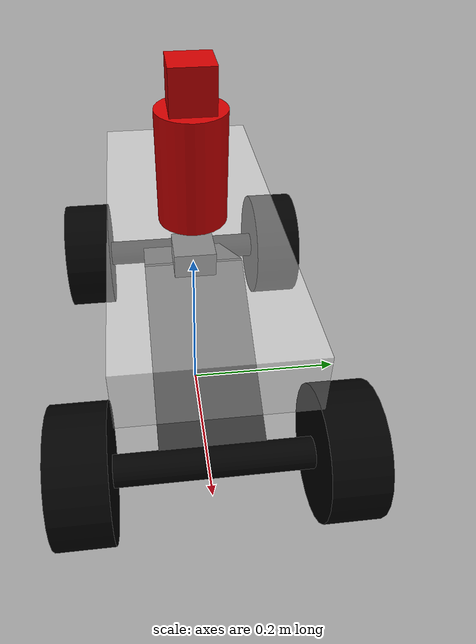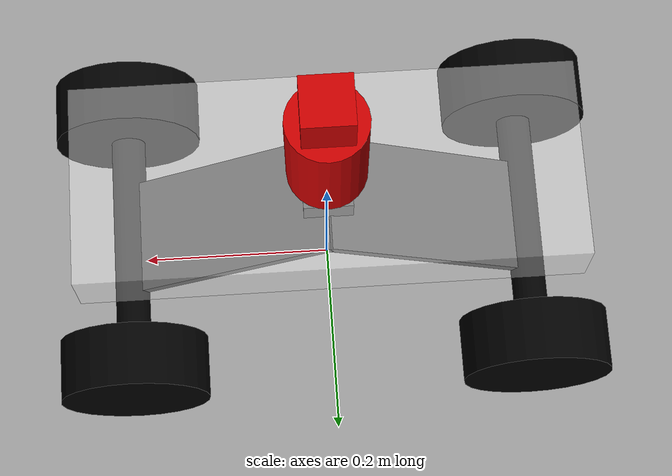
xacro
<?xml version="1.0"?>
<robot name="jetsoncar" xmlns:xacro="http://www.ros.org/wiki/xacro">

	<xacro:include filename="$(find jetsoncar_sim_description)/urdf/parameters.xacro" />
	<xacro:include filename="$(find jetsoncar_sim_description)/urdf/functions.xacro" />
	<xacro:include filename="$(find jetsoncar_sim_description)/urdf/physical.xacro" />
	<xacro:include filename="$(find jetsoncar_sim_description)/urdf/joints.xacro" />
	<xacro:include filename="$(find jetsoncar_sim_description)/urdf/transmissions.xacro" />
	<xacro:include filename="$(find jetsoncar_sim_description)/urdf/materials.xacro" />

	<link name="footprint"/>

	<link name="base_link">
		<visual>
			<material name="acrylic"/>
			<xacro:baseplate_geometry/>
		</visual>
		<collision>
			<xacro:baseplate_geometry/>
		</collision>
		<inertial>
			<xacro:baseplate_inertial/>
		</inertial>
	</link>
	<xacro:fixed_offset_joint parent="footprint" child="base_link" offset="0 0 ${baseplate_to_wheel_center+wheel_diameter/2}"/>

	<xacro:if value="${enable_imu}">
		<link name="imu">
			<visual>
				<material name="grey"/>
				<xacro:imu_geometry/>
			</visual>
			<collision>
				<xacro:imu_geometry/>
			</collision>
			<inertial>
				<xacro:imu_inertial/>
			</inertial>
		</link>
		<xacro:fixed_offset_joint parent="base_link" child="imu" offset="0 0 ${imu_height/2}"/> <!-- because origin is in the center, we want the IMU to stand on the baseplate -->
		<gazebo reference="imu">
		</gazebo>
	</xacro:if>

	<link name="front_mount">
		<visual>
			<material name="grey"/>
			<xacro:front_mount_geometry/>
		</visual>
		<collision>
			<xacro:front_mount_geometry/>
		</collision>
		<inertial>
			<xacro:front_mount_inertial/>
		</inertial>
	</link>
	<xacro:fixed_offset_joint parent="base_link" child="front_mount" offset="${front_to_rear_wheel_center/4} 0 -${baseplate_to_wheel_center/2}"/>

	<link name="rear_mount">
		<visual>
			<material name="grey"/>
			<xacro:rear_mount_geometry/>
		</visual>
		<collision>
			<xacro:rear_mount_geometry/>
		</collision>
		<inertial>
			<xacro:rear_mount_inertial/>
		</inertial>
	</link>
	<xacro:fixed_offset_joint parent="base_link" child="rear_mount" offset="-${front_to_rear_wheel_center/4} 0 -${baseplate_to_wheel_center/2}"/>

	<link name="front_shaft">
		<visual>
			<material name="black"/>
			<xacro:shaft_geometry/>
		</visual>
		<inertial>
			<xacro:shaft_inertial/>
		</inertial>
	</link>
	<xacro:fixed_offset_joint parent="front_mount" child="front_shaft" offset="${front_to_rear_wheel_center/4} 0 -${baseplate_to_wheel_center/2}"/>

	<link name="rear_shaft">
		<visual>
			<material name="black"/>
			<xacro:shaft_geometry/>
		</visual>
		<collision>
			<xacro:shaft_geometry/>
		</collision>
		<inertial>
			<xacro:shaft_inertial/>
		</inertial>
	</link>
	<xacro:fixed_offset_joint parent="rear_mount" child="rear_shaft" offset="-${front_to_rear_wheel_center/4} 0 -${baseplate_to_wheel_center/2}"/>

	<link name="front_right_hinge">
		<visual>
			<material name="white"/>
			<xacro:hinge_geometry/>
		</visual>
		<collision>
			<xacro:hinge_geometry/>
			<contact_coefficients mu="10" kp="1000.0" kd="1.0"/>  <!-- mu=The friction coefficient, kp=Stiffness coefficient, kd=Dampening coefficient -->
		</collision>
		<inertial>
			<xacro:hinge_inertial/>
		</inertial>
	</link>
	<xacro:hinge_joint parent="front_shaft" child="front_right_hinge" offset="0 -${left_to_right_wheel_center/2} 0"/>
	<xacro:hinge_transmission hinge="front_right_hinge"/>

	<link name="front_left_hinge">
		<visual>
			<material name="white"/>
			<xacro:hinge_geometry/>
		</visual>
		<collision>
			<xacro:hinge_geometry/>
			<contact_coefficients mu="10" kp="1000.0" kd="1.0"/>  <!-- mu=The friction coefficient, kp=Stiffness coefficient, kd=Dampening coefficient -->
		</collision>
		<inertial>
			<xacro:hinge_inertial/>
		</inertial>
	</link>
	<xacro:hinge_joint parent="front_shaft" child="front_left_hinge" offset="0 ${left_to_right_wheel_center/2} 0"/>
	<xacro:hinge_transmission hinge="front_left_hinge"/>

	<link name="front_right_wheel">
		<visual>
			<material name="black"/>
			<xacro:wheel_geometry/>
		</visual>
		<collision>
			<xacro:wheel_geometry/>
			<contact_coefficients mu="10" kp="1000.0" kd="1.0"/>  <!-- mu=The friction coefficient, kp=Stiffness coefficient, kd=Dampening coefficient -->
		</collision>
		<inertial>
			<xacro:wheel_inertial/>
		</inertial>
	</link>
	<xacro:wheel_joint parent="front_right_hinge" child="front_right_wheel" offset="0 0 0"/>
	<xacro:wheel_transmission wheel="front_right_wheel"/>

	<link name="front_left_wheel">
		<visual>
			<material name="black"/>
			<xacro:wheel_geometry/>
		</visual>
		<collision>
			<xacro:wheel_geometry/>
			<contact_coefficients mu="10" kp="1000.0" kd="1.0"/>  <!-- mu=The friction coefficient, kp=Stiffness coefficient, kd=Dampening coefficient -->
		</collision>
		<inertial>
			<xacro:wheel_inertial/>
		</inertial>
	</link>
	<xacro:wheel_joint parent="front_left_hinge" child="front_left_wheel" offset="0 0 0"/>
	<xacro:wheel_transmission wheel="front_left_wheel"/>

	<link name="rear_right_wheel">
		<visual>
			<material name="black"/>
			<xacro:wheel_geometry/>
		</visual>
		<collision>
			<xacro:wheel_geometry/>
			<contact_coefficients mu="10" kp="1000.0" kd="1.0"/>  <!-- mu=The friction coefficient, kp=Stiffness coefficient, kd=Dampening coefficient -->
		</collision>
		<inertial>
			<xacro:wheel_inertial/>
		</inertial>
	</link>
	<xacro:wheel_joint parent="rear_shaft" child="rear_right_wheel" offset="0 -${left_to_right_wheel_center/2} 0"/>
	<xacro:wheel_transmission wheel="rear_right_wheel"/>

	<link name="rear_left_wheel">
		<visual>
			<material name="black"/>
			<xacro:wheel_geometry/>
		</visual>
		<collision>
			<xacro:wheel_geometry/>
			<contact_coefficients mu="10" kp="1000.0" kd="1.0"/>  <!-- mu=The friction coefficient, kp=Stiffness coefficient, kd=Dampening coefficient -->
		</collision>
		<inertial>
			<xacro:wheel_inertial/>
		</inertial>
	</link>
	<xacro:wheel_joint parent="rear_shaft" child="rear_left_wheel" offset="0 ${left_to_right_wheel_center/2} 0"/>
	<xacro:wheel_transmission wheel="rear_left_wheel"/>

	<!-- Sensors -->
	<xacro:if value="${enable_front_camera}">
		<link name="camera_mount">
			<visual>
				<material name="blue"/>
				<xacro:camera_mount_geometry/>
			</visual>
			<collision>
				<xacro:camera_mount_geometry/>
			</collision>
			<inertial>
				<xacro:camera_mount_inertial/>
			</inertial>
		</link>
		<xacro:fixed_offset_joint parent="base_link" child="camera_mount" offset="${baseplate_length/2-baseplate_frontedge_to_camera} 0 ${baseplate_thickness}"/>

		<link name="camera">
			<visual>
				<material name="blue"/>
				<xacro:camera_geometry/>
			</visual>
			<collision>
				<xacro:camera_geometry/>
			</collision>
			<inertial>
				<xacro:camera_inertial/>
			</inertial>
		</link>
		<xacro:fixed_offset_joint parent="camera_mount" child="camera" offset="0 0 ${camera_mount_height+camera_height/2}"/>
	</xacro:if>

	<xacro:if value="${enable_dual_camera}">
		<link name="left_camera_mount">
			<visual>
				<material name="blue"/>
				<xacro:camera_mount_geometry/>
			</visual>
			<collision>
				<xacro:camera_mount_geometry/>
			</collision>
			<inertial>
				<xacro:camera_mount_inertial/>
			</inertial>
		</link>
		<xacro:fixed_offset_joint parent="base_link" child="left_camera_mount" offset="${baseplate_length/2-baseplate_frontedge_to_camera} ${camera_disparity/2} ${baseplate_thickness}"/>

		<link name="left_camera">
			<visual>
				<material name="blue"/>
				<xacro:camera_geometry/>
			</visual>
			<collision>
				<xacro:camera_geometry/>
			</collision>
			<inertial>
				<xacro:camera_inertial/>
			</inertial>
		</link>
		<xacro:fixed_offset_joint parent="left_camera_mount" child="left_camera" offset="0 0 ${camera_mount_height+camera_height/2}"/>

		<link name="right_camera_mount">
			<visual>
				<material name="blue"/>
				<xacro:camera_mount_geometry/>
			</visual>
			<collision>
				<xacro:camera_mount_geometry/>
			</collision>
			<inertial>
				<xacro:camera_mount_inertial/>
			</inertial>
		</link>
		<xacro:fixed_offset_joint parent="base_link" child="right_camera_mount" offset="${baseplate_length/2-baseplate_frontedge_to_camera} -${camera_disparity/2} ${baseplate_thickness}"/>

		<link name="right_camera">
			<visual>
				<material name="blue"/>
				<xacro:camera_geometry/>
			</visual>
			<collision>
				<xacro:camera_geometry/>
			</collision>
			<inertial>
				<xacro:camera_inertial/>
			</inertial>
		</link>
		<xacro:fixed_offset_joint parent="right_camera_mount" child="right_camera" offset="0 0 ${camera_mount_height+camera_height/2}"/>
	</xacro:if>

	<xacro:if value="${enable_lidar}">
		<link name="lidar_mount">
			<visual>
				<material name="red"/>
				<xacro:lidar_mount_geometry/>
			</visual>
			<collision>
				<xacro:lidar_mount_geometry/>
			</collision>
			<inertial>
				<xacro:lidar_mount_inertial/>
			</inertial>
		</link>
		<xacro:fixed_offset_joint parent="base_link" child="lidar_mount" offset="0 0 ${baseplate_thickness}"/>

		<link name="lidar">
			<visual>
				<material name="red"/>
				<xacro:lidar_geometry/>
			</visual>
			<collision>
				<xacro:lidar_geometry/>
			</collision>
			<inertial>
				<xacro:lidar_inertial/>
			</inertial>
		</link>
		<xacro:fixed_offset_joint parent="lidar_mount" child="lidar" offset="0 0 ${lidar_mount_height+lidar_height/2}"/>
	</xacro:if>

	<xacro:if value="${enable_range_sensors}">
		<link name="ranger_front_left">
			<visual>
				<material name="white"/>
				<xacro:ranger_geometry/>
			</visual>
			<collision>
				<xacro:ranger_geometry/>
			</collision>
			<inertial>
				<xacro:ranger_inertial/>
			</inertial>
		</link>
		<xacro:fixed_offset_joint parent="base_link" child="ranger_front_left" offset="${baseplate_length/2} -${camera_disparity/2} ${baseplate_thickness/2}"/>

		<link name="ranger_front_right">
			<visual>
				<material name="white"/>
				<xacro:ranger_geometry/>
			</visual>
			<collision>
				<xacro:ranger_geometry/>
			</collision>
			<inertial>
				<xacro:ranger_inertial/>
			</inertial>
		</link>
		<xacro:fixed_offset_joint parent="base_link" child="ranger_front_right" offset="${baseplate_length/2} ${camera_disparity/2} ${baseplate_thickness/2}"/>
	</xacro:if>

	<!-- Link Gazebo and ROS - this has to happen as the last thing -->
	<xacro:include filename="$(find jetsoncar_sim_description)/urdf/gazebo.xacro" />

	<xacro:if value="${enable_realsense}">
		<!-- Add realsense camera link -->
		<!-- Note that this Realsense camera is not the correct one, hence the physical location (frames) of the different image streams will be different in real life -->
		<!-- Import macro for realsense-RS200 camera-->
		<xacro:include filename="$(find realsense_gazebo_plugin)/urdf/realsense-RS200.macro.xacro"/>
		<!-- Create camera instance -->
		<xacro:realsense-rs200 prefix="realsense" parent="base_link">
			<origin xyz="${baseplate_length/2-baseplate_frontedge_to_camera} 0 ${baseplate_thickness+camera_mount_height+camera_height/2}" rpy="0 0 0" />
		</xacro:realsense-rs200>
	</xacro:if>
</robot>

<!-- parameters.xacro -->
<robot name="jetsoncar" xmlns:xacro="http://www.ros.org/wiki/xacro">

	<!-- X axis direction is forward, Y axis direction is left -->

	<!-- Sensors related properties -->
	<xacro:property name="enable_lidar" value="true" />
	<xacro:property name="enable_realsense" value="false" />
	<xacro:property name="enable_range_sensors" value="false" />
	<xacro:property name="enable_dual_camera" value="false" />
	<xacro:property name="enable_front_camera" value="false" />
	<xacro:property name="enable_imu" value="true" />

	<!-- IMU related properties -->
	<xacro:property name="imu_width" value="0.05" />
	<xacro:property name="imu_length" value="0.05" />
	<xacro:property name="imu_height" value="0.03" />

	<!-- Wheel related properties -->
	<xacro:property name="wheel_diameter" value="0.155" />
	<xacro:property name="wheel_thickness" value="0.064" />
	<xacro:property name="wheel_weight" value="0.500" />

	<!-- suspension stiffness, damping, and limits -->
	<xacro:property name="susp_travel" value="${wheel_diameter/2}"/>
	<xacro:property name="susp_lower" value="${-susp_travel/2}"/>
	<xacro:property name="susp_upper" value="${susp_travel/2}"/>
	<xacro:property name="susp_damping" value="70"/>
	<xacro:property name="susp_stiffness" value="5"/>
	<xacro:property name="susp_spring_center" value="0.05"/>

	<!-- RC car physical layout -->
	<xacro:property name="front_to_rear_wheel_center" value="0.42" />
	<xacro:property name="left_to_right_wheel_center" value="0.285" />
	<xacro:property name="baseplate_to_wheel_center" value="0.118" />
	<xacro:property name="front_to_rear_wheel_center" value="0.42" />
	<xacro:property name="front_to_rear_wheel_center" value="0.42" />

	<!-- Baseplate related properties -->
	<xacro:property name="baseplate_width" value="0.20" />
	<xacro:property name="baseplate_length" value="0.50" />
	<xacro:property name="baseplate_thickness" value="0.0675" />
	<xacro:property name="baseplate_weight" value="2.000" />

	<!-- Shaft and mount related properties -->
	<xacro:property name="mount_weight" value="0.500" />
	<xacro:property name="shaft_weight" value="0.100" />

	<!-- Camera related properties -->
	<xacro:property name="camera_width" value="0.094" />
	<xacro:property name="camera_height" value="0.029" />
	<xacro:property name="camera_depth" value="0.024" />
	<xacro:property name="camera_weight" value="0.162" />
	<xacro:property name="baseplate_frontedge_to_camera" value="0.02" />
	<xacro:property name="camera_mount_height" value="0.05" />
	<xacro:property name="camera_mount_diameter" value="0.01" />
	<xacro:property name="camera_disparity" value="0.14" />

	<!-- LiDAR related properties -->
	<xacro:property name="lidar_width" value="0.05" />
	<xacro:property name="lidar_length" value="0.05" />
	<xacro:property name="lidar_height" value="0.05" />
	<xacro:property name="lidar_weight" value="0.200" />
	<xacro:property name="lidar_mount_diameter" value="0.08" />
	<xacro:property name="lidar_mount_height" value="0.13" />

	<!-- Range sensor related properties -->
	<xacro:property name="ranger_width" value="0.03" />
	<xacro:property name="ranger_length" value="0.01" />
	<xacro:property name="ranger_height" value="0.02" />
	<xacro:property name="ranger_weight" value="0.050" />

	<!-- Steering related properties -->
	<xacro:property name="steering_wheel_angle_limit" value="${40/180*pi}" />

</robot>

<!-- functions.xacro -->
<robot name="jetsoncar" xmlns:xacro="http://www.ros.org/wiki/xacro">

	<!-- Based on https://en.wikipedia.org/wiki/List_of_moments_of_inertia -->
	<xacro:macro name="box_inertial" params="mass width length height">
		<mass value="${mass}" />
		<inertia ixx="${1/12*mass*(width*width+height*height)}"
			 ixy="0"
			 ixz="0"
			 iyy="${1/12*mass*(length*length+height*height)}"
			 iyz="0"
			 izz="${1/12*mass*(width*width+length*length)}"
		/>
	</xacro:macro>

	<xacro:macro name="cylinder_inertial" params="mass radius length">
		<mass value="${mass}" />
		<inertia ixx="${1/12*mass*(3*radius*radius+length*length)}"
			 ixy="0"
			 ixz="0"
			 iyy="${1/12*mass*(3*radius*radius+length*length)}"
			 iyz="0"
			 izz="${1/2*mass*radius*radius}"
		/>
	</xacro:macro>

	<xacro:macro name="solid_sphere_inertial" params="mass radius">
		<mass value="${mass}" />
		<inertia ixx="${2/5*mass*radius*radius}"
			 ixy="0"
			 ixz="0"
			 iyy="${2/5*mass*radius*radius}"
			 iyz="0"
			 izz="${2/5*mass*radius*radius}"
		/>
	</xacro:macro>

	<xacro:macro name="hollow_sphere_inertial" params="mass radius ">
		<mass value="${mass}" />
		<inertia ixx="${2/3*mass*radius*radius}"
			 ixy="0"
			 ixz="0"
			 iyy="${2/3*mass*radius*radius}"
			 iyz="0"
			 izz="${2/3*mass*radius*radius}"
		/>
	</xacro:macro>

	<xacro:macro name="small_inertial">
		<origin xyz="0 0 0" rpy="0 0 0" />
		<mass value="0.001" />
		<inertia ixx="0.0"
				 ixy="0"
				 ixz="0"
				 iyy="0.0"
				 iyz="0"
				 izz="0.0"
		/>
	</xacro:macro>

</robot>

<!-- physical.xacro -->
<robot name="jetsoncar" xmlns:xacro="http://www.ros.org/wiki/xacro">

	<!-- X axis direction is forward, Y axis direction is left -->
	<xacro:include filename="$(find jetsoncar_sim_description)/urdf/parameters.xacro" />

	<!-- IMU -->
	<xacro:macro name="imu_geometry">
		<origin xyz="0 0 0" rpy="0 0 0" /> <!-- origin (0,0,0) is in the center of the box -->
		<geometry>
			<box size="${imu_length} ${imu_width} ${imu_height}"/> <!-- 50x50x30 mm, Please confirm against 3D drawings -->
		</geometry>
	</xacro:macro>
	<xacro:macro name="imu_inertial">
		<origin xyz="0 0 0" rpy="0 0 0" /> <!-- origin (0,0,0) is in the center of the box -->
		<xacro:box_inertial mass="0.010" length="${imu_length}" width="${imu_width}" height="${imu_height}" /> <!-- 10 grams -->
	</xacro:macro>

	<!-- Baseplate -->
	<xacro:macro name="baseplate_geometry">
		<origin xyz="0 0 ${baseplate_thickness/2}" rpy="0 0 0" /> <!-- origin (0,0,0) is in the center of the box, so place the origin of this in the bottom of baseplate -->
		<geometry>
			<box size="${baseplate_length} ${baseplate_width} ${baseplate_thickness}"/> <!-- 50x20x6.75 cm, X-axis is front of vehicle -->
		</geometry>
	</xacro:macro>
	<xacro:macro name="baseplate_inertial">
		<origin xyz="0 0 ${baseplate_thickness/2}" rpy="0 0 0" /> <!-- origin (0,0,0) is in the center of the box, so place the origin of this in the bottom of baseplate -->
		<xacro:box_inertial mass="${baseplate_weight}" length="${baseplate_length}" width="${baseplate_width}" height="${baseplate_thickness}" />
	</xacro:macro>

	<!-- Mount -->
	<xacro:macro name="front_mount_geometry">
		<origin xyz="0 0 0" rpy="0 0.5 0" /> <!-- origin (0,0,0) is in the center of the box -->
		<geometry>
			<box size="0.24 0.12 0.01"/>
		</geometry>
	</xacro:macro>
	<xacro:macro name="rear_mount_geometry">
		<origin xyz="0 0 0" rpy="0 -0.5 0" /> <!-- origin (0,0,0) is in the center of the box -->
		<geometry>
			<box size="0.24 0.12 0.01"/>
		</geometry>
	</xacro:macro>
	<xacro:macro name="front_mount_inertial">
		<origin xyz="0 0 0" rpy="0 0.5 0" /> <!-- origin (0,0,0) is in the center of the box -->
		<xacro:box_inertial mass="${mount_weight}" length="0.24" width="0.12" height="0.01" />
	</xacro:macro>
	<xacro:macro name="rear_mount_inertial">
		<origin xyz="0 0 0" rpy="0 -0.5 0" /> <!-- origin (0,0,0) is in the center of the box -->
		<xacro:box_inertial mass="${mount_weight}" length="0.24" width="0.12" height="0.01" />
	</xacro:macro>

	<!-- Shaft -->
	<xacro:macro name="shaft_geometry">
		<origin xyz="0 0 0" rpy="1.570796327 0 0" /> <!-- origin (0,0,0) is in the center of the cylinder -->
		<geometry>
			<cylinder length="${left_to_right_wheel_center}" radius="0.018"/> <!-- confirm length between wheels -->
		</geometry>
	</xacro:macro>
	<xacro:macro name="shaft_inertial">
		<origin xyz="0 0 0" rpy="1.570796327 0 0" /> <!-- origin (0,0,0) is in the center of the cylinder -->
		<xacro:cylinder_inertial mass="${shaft_weight}" radius="0.018" length="${left_to_right_wheel_center}" />
	</xacro:macro>

	<!-- Hinge -->
	<xacro:macro name="hinge_geometry">
		<origin xyz="0 0 0" rpy="0 0 0" />
		<geometry>
			<sphere radius="0.015"/>
		</geometry>
	</xacro:macro>
	<xacro:macro name="hinge_inertial">
		<origin xyz="0 0 0" rpy="0 0 0" />
		<mass value="0.05" />
		<inertia ixx="1e-5" ixy="0" ixz="0" iyy="1e-5" iyz="0" izz="1e-5" /> <!-- small inertia -->
	</xacro:macro>

	<!-- Wheel -->
	<xacro:macro name="wheel_geometry">
		<origin xyz="0 0 0" rpy="1.570796327 0 0" /> <!-- origin (0,0,0) is in the center of the cylinder -->
		<geometry>
			<cylinder length="${wheel_thickness}" radius="${wheel_diameter/2}"/>
		</geometry>
	</xacro:macro>
	<xacro:macro name="wheel_inertial">
		<origin xyz="0 0 0" rpy="1.570796327 0 0" /> <!-- origin (0,0,0) is in the center of the cylinder -->
		<xacro:cylinder_inertial mass="${wheel_weight}" radius="${wheel_diameter/2}" length="${wheel_thickness}" />
	</xacro:macro>

	<!-- Camera -->
	<xacro:macro name="camera_mount_geometry">
		<origin xyz="0 0 ${camera_mount_height/2}" rpy="0 0 0" /> <!-- origin (0,0,0) is in the center of the box -->
		<geometry>
			<cylinder length="${camera_mount_height}" radius="${camera_mount_diameter/2}"/> <!-- confirm length between wheels -->
		</geometry>
	</xacro:macro>
	<xacro:macro name="camera_mount_inertial">
		<origin xyz="0 0 0" rpy="0 0 0" /> <!-- origin (0,0,0) is in the center of the box -->
		<mass value="0.005" /> <!-- 5 grams -->
		<inertia ixx="1e-6" ixy="0" ixz="0" iyy="1e-6" iyz="0" izz="1e-6" /> <!-- small inertia -->
	</xacro:macro>

	<xacro:macro name="camera_geometry">
		<origin xyz="0 0 0" rpy="0 0 0" /> <!-- origin (0,0,0) is in the center of the box -->
		<geometry>
			<box size="${camera_depth} ${camera_width} ${camera_height}"/>
		</geometry>
	</xacro:macro>
	<xacro:macro name="camera_inertial">
		<origin xyz="0 0 0" rpy="0 0 0" /> <!-- origin (0,0,0) is in the center of the box -->
		<xacro:box_inertial mass="${camera_weight}" length="${camera_depth}" width="${camera_width}" height="${camera_height}" />
	</xacro:macro>

	<!-- LiDAR -->
	<xacro:macro name="lidar_mount_geometry">
		<origin xyz="0 0 ${lidar_mount_height/2}" rpy="0 0 0" /> <!-- origin (0,0,0) is in the center of the box -->
		<geometry>
			<cylinder length="${lidar_mount_height}" radius="${lidar_mount_diameter/2}"/>
		</geometry>
	</xacro:macro>
	<xacro:macro name="lidar_mount_inertial">
		<origin xyz="0 0 0" rpy="0 0 0" /> <!-- origin (0,0,0) is in the center of the box -->
		<mass value="0.020" />
		<inertia ixx="1e-7" ixy="0" ixz="0" iyy="1e-7" iyz="0" izz="1e-7" />
	</xacro:macro>

	<xacro:macro name="lidar_geometry">
		<origin xyz="0 0 0" rpy="0 0 0" /> <!-- origin (0,0,0) is in the center of the box -->
		<geometry>
			<box size="${lidar_length} ${lidar_width} ${lidar_height}"/>
		</geometry>
	</xacro:macro>
	<xacro:macro name="lidar_inertial">
		<origin xyz="0 0 0" rpy="0 0 0" /> <!-- origin (0,0,0) is in the center of the box -->
		<xacro:box_inertial mass="${lidar_weight}" length="${lidar_length}" width="${lidar_width}" height="${lidar_height}" />
	</xacro:macro>

	<!-- Range sensor -->
	<xacro:macro name="ranger_geometry">
		<origin xyz="0 0 0" rpy="0 0 0" /> <!-- origin (0,0,0) is in the center of the box -->
		<geometry>
			<box size="${ranger_length} ${ranger_width} ${ranger_height}"/>
		</geometry>
	</xacro:macro>
	<xacro:macro name="ranger_inertial">
		<origin xyz="0 0 0" rpy="0 0 0" /> <!-- origin (0,0,0) is in the center of the box -->
		<xacro:box_inertial mass="${ranger_weight}" length="${ranger_length}" width="${ranger_width}" height="${ranger_height}" />
	</xacro:macro>

</robot>

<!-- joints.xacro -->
<robot name="jetsoncar" xmlns:xacro="http://www.ros.org/wiki/xacro">

	<xacro:include filename="$(find jetsoncar_sim_description)/urdf/parameters.xacro" />

	<xacro:macro name="fixed_offset_joint" params="parent child offset">
		<joint name="${parent}_to_${child}" type="fixed">
			<parent link="${parent}"/>
			<child link="${child}"/>
			<origin xyz="${offset}" rpy="0 0 0" /> <!-- offset from parent to child, so with direction based in parent frame -->
		</joint>
	</xacro:macro>

	<xacro:macro name="fixed_offset_joint_rpy" params="parent child offset rpy">
		<joint name="${parent}_to_${child}" type="fixed">
			<parent link="${parent}"/>
			<child link="${child}"/>
			<origin xyz="${offset}" rpy="${rpy}" /> <!-- offset from parent to child, so with direction based in parent frame -->
		</joint>
	</xacro:macro>

	<xacro:macro name="dampener_joint" params="parent child offset">
		<joint name="${parent}_to_${child}" type="prismatic">
			<parent link="${parent}"/>
			<child link="${child}"/>
			<origin xyz="${offset}" rpy="0 0 0" /> <!-- offset from parent to child, so with direction based in parent frame -->
			<axis xyz="0 0 -1"/> <!-- suspension works up and down -->
			<limit lower="${susp_lower}" upper="${susp_upper}" effort="0" velocity="0"/>
		        <dynamics damping="${susp_damping}" spring_stiffness="${susp_stiffness}" spring_reference="${susp_spring_center}"/>
			<physics>
				<ode>
					<implicit_spring_damper>0</implicit_spring_damper>
				</ode>
			</physics>
		</joint>
	</xacro:macro>

	<xacro:macro name="hinge_joint" params="parent child offset">
		<joint name="${child}_joint" type="revolute"> <!-- revolute is a joint with a range limited motion around its' axis -->
			<parent link="${parent}"/>
			<child link="${child}"/>
			<origin xyz="${offset}" rpy="0 0 0" /> <!-- offset from parent to child, so with direction based in parent frame -->
			<axis xyz="0 0 1"/>
	    		<limit lower="-${steering_wheel_angle_limit}" upper="${steering_wheel_angle_limit}" effort="1" velocity="10"/> <!-- effort is similar to torque/acceleration -->
			<!-- friction - The physical static friction. For prismatic joints, the units are Newtons. For revolving joints, the units are Newton meters. -->
			<!-- damping - The physical damping value. For prismatic joints, the units are Newton seconds per meter. For revolving joints, Newton meter secons per radian. -->
			<dynamics friction="0.0" damping="0.1"/>
		</joint>
	</xacro:macro>

	<xacro:macro name="wheel_joint" params="parent child offset">
		<joint name="${child}_joint" type="continuous"> <!-- continuous is a joint of continous motion around its' axis -->
			<parent link="${parent}"/>
			<child link="${child}"/>
			<origin xyz="${offset}" rpy="0 0 0" /> <!-- offset from parent to child, so with direction based in parent frame -->
			<axis xyz="0 1 0"/>
			<!-- friction - The physical static friction. For prismatic joints, the units are Newtons. For revolving joints, the units are Newton meters. -->
			<!-- damping - The physical damping value. For prismatic joints, the units are Newton seconds per meter. For revolving joints, Newton meter secons per radian. -->
			<limit effort="10" velocity="100"/>
		</joint>
	</xacro:macro>

</robot>

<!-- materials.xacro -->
<robot name="jetsoncar" xmlns:xacro="http://www.ros.org/wiki/xacro">

<material name="black">
  <color rgba="0.0 0.0 0.0 1.0"/>
</material>

<material name="blue">
  <color rgba="0.0 0.0 0.8 1.0"/>
</material>

<material name="green">
  <color rgba="0.0 0.8 0.0 1.0"/>
</material>

<material name="grey">
  <color rgba="0.2 0.2 0.2 1.0"/>
</material>

<material name="orange">
  <color rgba="${255/255} ${108/255} ${10/255} 1.0"/>
</material>

<material name="brown">
  <color rgba="${222/255} ${207/255} ${195/255} 1.0"/>
</material>

<material name="red">
  <color rgba="0.8 0.0 0.0 1.0"/>
</material>

<material name="white">
  <color rgba="1.0 1.0 1.0 1.0"/>
</material>

<material name="acrylic">
  <color rgba="1.0 1.0 1.0 0.4"/>
</material>

</robot>
